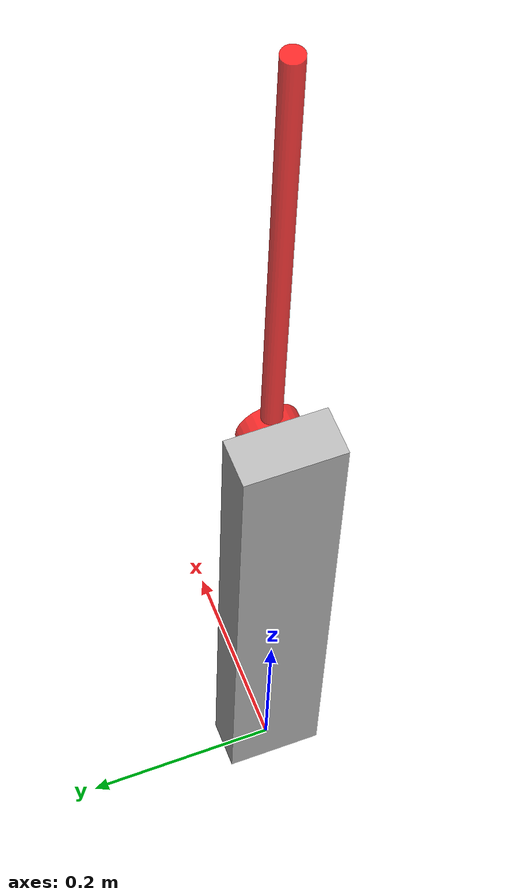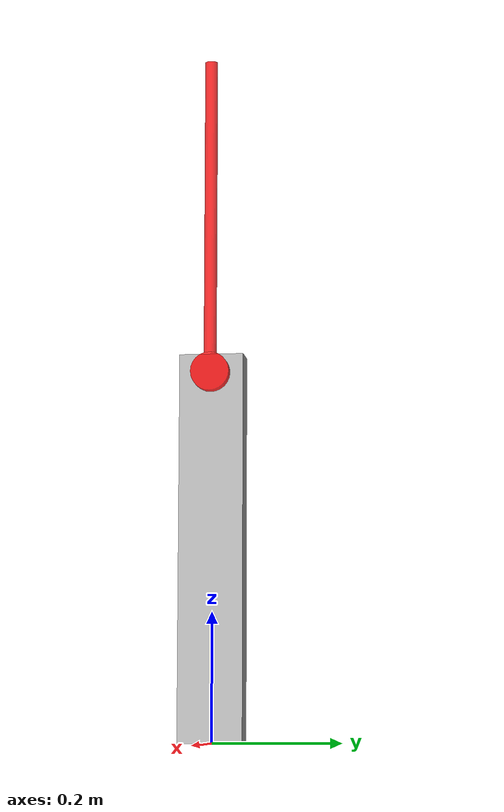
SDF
<sdf version='1.6'>
  <model name='pendulum_xacro'>
    <link name='support'>
      <pose>0 0 0 0 -0 0</pose>
      <inertial>
        <pose>0 0 0.3 0 -0 0</pose>
        <mass>1000</mass>
        <inertia>
          <ixx>30.8333</ixx>
          <ixy>0</ixy>
          <ixz>0</ixz>
          <iyy>30.2083</iyy>
          <iyz>0</iyz>
          <izz>1.04167</izz>
        </inertia>
      </inertial>
      <collision name='support_collision'>
        <pose>0 0 0.3 0 -0 0</pose>
        <geometry>
          <box>
            <size>0.05 0.1 0.6</size>
          </box>
        </geometry>
      </collision>
      <visual name='support_visual'>
        <pose>0 0 0.3 0 -0 0</pose>
        <geometry>
          <box>
            <size>0.05 0.1 0.6</size>
          </box>
        </geometry>
      </visual>
    </link>
    <link name='pendulum'>
      <pose>0.035 0 0.57 0 -0 0</pose>
      <inertial>
        <pose>0 0 0.25 0 -0 0</pose>
        <mass>1</mass>
        <inertia>
          <ixx>0.0208583</ixx>
          <ixy>0</ixy>
          <ixz>0</ixz>
          <iyy>0.0208583</iyy>
          <iyz>0</iyz>
          <izz>5e-05</izz>
        </inertia>
      </inertial>
      <collision name='pendulum_collision'>
        <pose>0 0 0.25 0 -0 0</pose>
        <geometry>
          <cylinder>
            <length>0.5</length>
            <radius>0.01</radius>
          </cylinder>
        </geometry>
        <surface>
          <contact>
            <ode/>
          </contact>
          <friction>
            <ode/>
          </friction>
        </surface>
      </collision>
      <visual name='pendulum_visual'>
        <pose>0 0 0.25 0 -0 0</pose>
        <geometry>
          <cylinder>
            <length>0.5</length>
            <radius>0.01</radius>
          </cylinder>
        </geometry>
        <material>
          <ambient>1 0 0 0.8</ambient>
          <diffuse>1 0 0 0.8</diffuse>
          <specular>1 0 0 0.8</specular>
          <emissive>1 0 0 0.8</emissive>
        </material>
      </visual>
      <visual name='pendulum_visual_1'>
        <pose>0 0 0 3.14159 1.57079 3.14159</pose>
        <geometry>
          <cylinder>
            <length>0.02</length>
            <radius>0.03</radius>
          </cylinder>
        </geometry>
        <material>
          <ambient>1 0 0 0.8</ambient>
          <diffuse>1 0 0 0.8</diffuse>
          <specular>1 0 0 0.8</specular>
          <emissive>1 0 0 0.8</emissive>
        </material>
      </visual>
      <gravity>1</gravity>
      <velocity_decay/>
    </link>
    <joint name='pivot' type='revolute'>
      <child>pendulum</child>
      <parent>support</parent>
      <axis>
        <xyz>1 0 0</xyz>
        <limit>
          <lower>-1e+16</lower>
          <upper>1e+16</upper>
        </limit>
        <dynamics>
          <damping>0</damping>
          <friction>0</friction>
          <spring_reference>0</spring_reference>
          <spring_stiffness>0</spring_stiffness>
        </dynamics>
        <use_parent_model_frame>0</use_parent_model_frame>
      </axis>
    </joint>
  </model>
</sdf>
